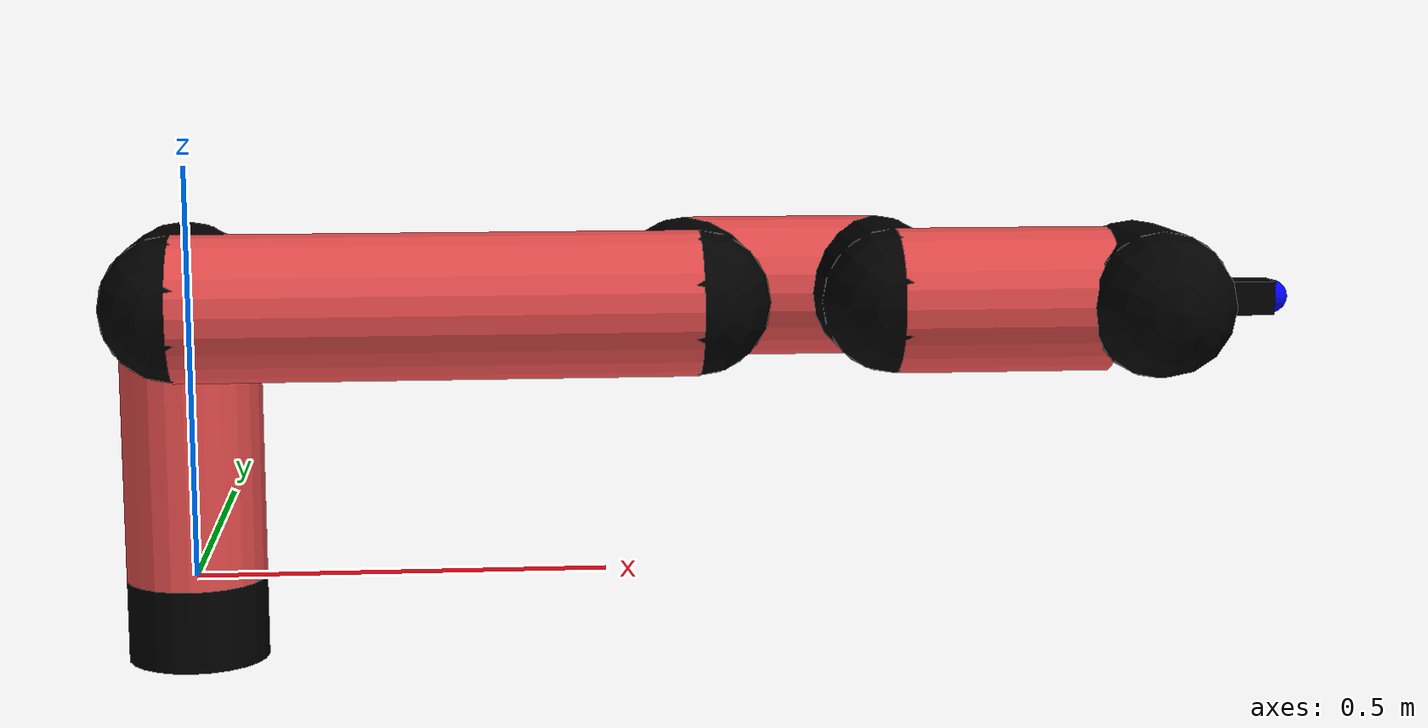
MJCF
<mujoco model="manipulator">
		<compiler angle="degree" coordinate="local" inertiafromgeom="auto" meshdir="meshes/"/>
		<option gravity="0 0 0" integrator="RK4" iterations="30" timestep="0.01"/>

		<default>
		<joint armature="1" limited="true" stiffness="10" damping="15" frictionloss="5.0"/>
		<geom conaffinity="1" condim="3" contype="1" friction=".5 .1 .1" margin="0.002"/>
		<motor ctrllimited="true"/>
		<position ctrllimited="true"/>
		</default>

		<asset>
		<texture builtin="gradient" height="100" rgb1="1.0 1.0 1.0" rgb2="1.0 1.0 1.0" type="skybox" width="100"/>
		<texture builtin="flat" height="32" name="arm_tex" rgb1="0.9 0.3 0.3" type="2d" width="32"/>
		<texture builtin="flat" height="32" name="gripper_tex" rgb1="0.0 0.0 0.0" type="cube" width="32"/>

		<material name="arm_mat" shininess="0.1" specular="0.1" texture="arm_tex"/>
		<material name="gripper_mat" shininess="1" specular="1" texture="gripper_tex"/>
		</asset>

		<worldbody>
		<light cutoff="45" diffuse=".8 .8 .8" dir="0 0.16 -1" directional="false" name="light" pos="0 -2.0 8.0" specular="0.3 0.3 0.3"/>

		<body name="base_link" pos="0 0 -0.1">
		<geom fromto="0 0 0 0 0 0.1" material="arm_mat" name="base_link" rgba="0.0 0.0 0.0 1" size="0.085" type="cylinder"/>
		</body>

		<body name="l1" pos="0 0 0">
<geom fromto="0 0 0 0 0 0.35" material="arm_mat" name="l1" rgba="0.9 0.3 0.3 1" size="0.085" type="cylinder"/>
<geom fromto="0 0 0.35 0 -0.16 0.35" material="arm_mat" name="l1_ex" rgba="0.0 0.0 0.0 1" size="0.085" type="capsule"/>
<joint axis="0 0 1" name="j1" pos="0 0 0" range="-90 90" damping="32.55" frictionloss="9.02"/>

<body name="l2" pos="0 -0.16 0.35">
<geom fromto="0 0 0 0.6 0 0" material="arm_mat" name="l2" rgba="0.9 0.3 0.3 1" size="0.085" type="cylinder"/>
<geom fromto="0.6 0 0 0.6 0.16 0" material="arm_mat" name="l2_ex" rgba="0.0 0.0 0.0 1" size="0.085" type="capsule"/>
<joint axis="0.13 1.24 0.12" name="j2" pos="0 0 0" range="-90 60" damping="35.19" frictionloss="10.03"/>

<body name="l3" pos="0.6 0.16 0">
<geom fromto="0 0 0 0.23 0 0" material="arm_mat" name="l3" rgba="0.9 0.3 0.3 1" size="0.085" type="cylinder"/>
<geom fromto="0.23 0 0 0.23 -0.16 0" material="arm_mat" name="l3_ex" rgba="0.0 0.0 0.0 1" size="0.085" type="capsule"/>
<joint axis="-0.11 1.14 -0.2" name="j3" pos="0 0 0" range="-30 60" damping="26.14" frictionloss="11.49"/>

<body name="l4" pos="0.23 -0.16 0">
<geom fromto="0 0 0 0.25 0 0" material="arm_mat" name="l4" rgba="0.9 0.3 0.3 1" size="0.085" type="cylinder"/>
<joint axis="-0.03 1.2 -0.1" name="j4" pos="0 0 0" range="-30 60" damping="30.73" frictionloss="11.02"/>

<body name="gripper" pos="0.25 0 0">
<geom fromto="0.05 -0.07 0 0.05 0.07 0" material="gripper_mat" name="gripper" rgba="0.0 0.0 0.0 1" size="0.085" type="capsule"/><joint axis="1 0 0" name="j5" pos="0 0 0" range="-90 90" damping="15" frictionloss="5.0"/><body name="finger" pos="0.1 0 0">
<geom fromto="0 0.0 0 0.1 0.0 0" material="gripper_mat" name="finger" rgba="0.0 0.0 0.0 1" size="0.020 0.06 0.06" type="box"/>
</body>
<site name="current" pos="0.2 0. 0.0" rgba="0. 0. 1.0 1" size="0.02" type="sphere"/>
</body>
</body>
</body>
</body>
</body>
</worldbody>
<actuator>
<motor ctrllimited="true" ctrlrange="-1.0 1.0" joint="j1" gear="83.5"/>
<motor ctrllimited="true" ctrlrange="-1.0 1.0" joint="j2" gear="83.56"/>
<motor ctrllimited="true" ctrlrange="-1.0 1.0" joint="j3" gear="76.57"/>
<motor ctrllimited="true" ctrlrange="-1.0 1.0" joint="j4" gear="86.98"/>
<motor ctrllimited="true" ctrlrange="-1.0 1.0" joint="j5" gear="80"/>
</actuator>
</mujoco>
